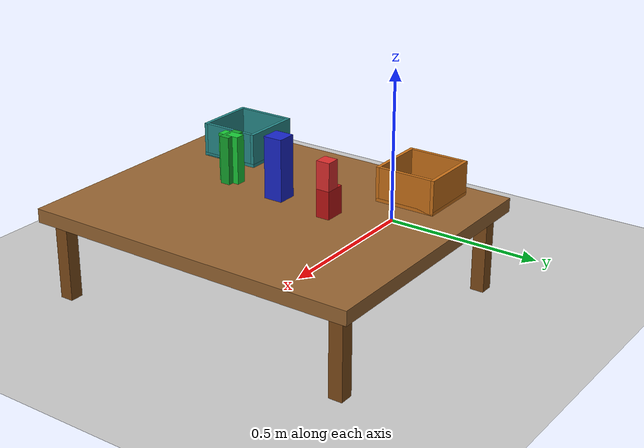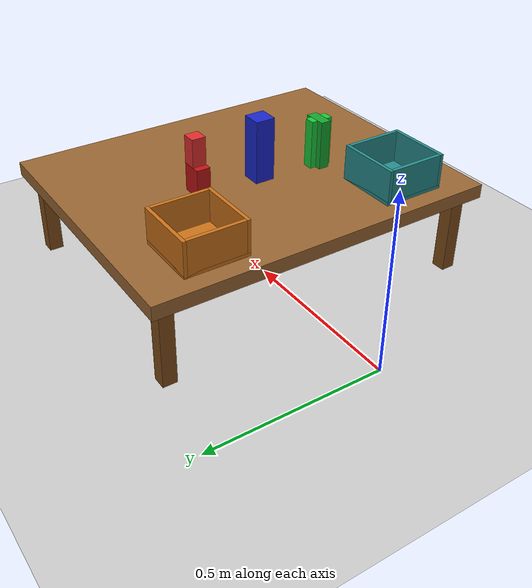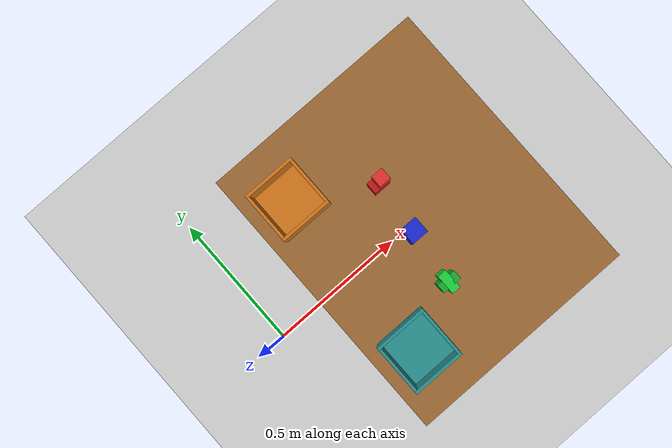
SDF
<?xml version="1.0" ?>
<sdf version="1.9">
  <world name="tabletop_world">
    <!-- GUI (default layout with custom camera pose) -->
    <gui fullscreen='0'>
      <plugin filename="MinimalScene" name="3D View">
        <gz-gui>
          <title>3D View</title>
          <property type="bool" key="showTitleBar">false</property>
          <property type="string" key="state">docked</property>
        </gz-gui>
        <engine>ogre2</engine>
        <scene>scene</scene>
        <ambient_light>0.4 0.4 0.4</ambient_light>
        <background_color>0.8 0.8 0.8</background_color>
        <camera_pose>1.31 0.98 1.07 0 0.39 -2.36</camera_pose>
      </plugin>
      <plugin filename="EntityContextMenuPlugin" name="Entity context menu">
        <gz-gui>
          <property key="state" type="string">floating</property>
          <property key="width" type="double">5</property>
          <property key="height" type="double">5</property>
          <property key="showTitleBar" type="bool">false</property>
        </gz-gui>
      </plugin>
      <plugin filename="GzSceneManager" name="Scene Manager">
        <gz-gui>
          <property key="resizable" type="bool">false</property>
          <property key="width" type="double">5</property>
          <property key="height" type="double">5</property>
          <property key="state" type="string">floating</property>
          <property key="showTitleBar" type="bool">false</property>
        </gz-gui>
      </plugin>
      <plugin filename="InteractiveViewControl" name="Interactive view control">
        <gz-gui>
          <property key="resizable" type="bool">false</property>
          <property key="width" type="double">5</property>
          <property key="height" type="double">5</property>
          <property key="state" type="string">floating</property>
          <property key="showTitleBar" type="bool">false</property>
        </gz-gui>
      </plugin>
      <plugin filename="CameraTracking" name="Camera Tracking">
        <gz-gui>
          <property key="resizable" type="bool">false</property>
          <property key="width" type="double">5</property>
          <property key="height" type="double">5</property>
          <property key="state" type="string">floating</property>
          <property key="showTitleBar" type="bool">false</property>
        </gz-gui>
      </plugin>
      <plugin filename="MarkerManager" name="Marker manager">
        <gz-gui>
          <property key="resizable" type="bool">false</property>
          <property key="width" type="double">5</property>
          <property key="height" type="double">5</property>
          <property key="state" type="string">floating</property>
          <property key="showTitleBar" type="bool">false</property>
        </gz-gui>
      </plugin>
      <plugin filename="SelectEntities" name="Select Entities">
        <gz-gui>
          <property key="resizable" type="bool">false</property>
          <property key="width" type="double">5</property>
          <property key="height" type="double">5</property>
          <property key="state" type="string">floating</property>
          <property key="showTitleBar" type="bool">false</property>
        </gz-gui>
      </plugin>
      <plugin filename="Spawn" name="Spawn Entities">
        <gz-gui>
          <property key="resizable" type="bool">false</property>
          <property key="width" type="double">5</property>
          <property key="height" type="double">5</property>
          <property key="state" type="string">floating</property>
          <property key="showTitleBar" type="bool">false</property>
        </gz-gui>
      </plugin>
      <plugin filename="VisualizationCapabilities" name="Visualization Capabilities">
        <gz-gui>
          <property key="resizable" type="bool">false</property>
          <property key="width" type="double">5</property>
          <property key="height" type="double">5</property>
          <property key="state" type="string">floating</property>
          <property key="showTitleBar" type="bool">false</property>
        </gz-gui>
      </plugin>
      <plugin filename="WorldControl" name="World control">
        <gz-gui>
          <title>World control</title>
          <property type="bool" key="showTitleBar">false</property>
          <property type="bool" key="resizable">false</property>
          <property type="double" key="height">72</property>
          <property type="double" key="z">1</property>
          <property type="string" key="state">floating</property>
          <anchors target="3D View">
            <line own="left" target="left"/>
            <line own="bottom" target="bottom"/>
          </anchors>
        </gz-gui>
        <play_pause>true</play_pause>
        <step>true</step>
        <start_paused>true</start_paused>
        <use_event>true</use_event>
      </plugin>
      <plugin filename="WorldStats" name="World stats">
        <gz-gui>
          <title>World stats</title>
          <property type="bool" key="showTitleBar">false</property>
          <property type="bool" key="resizable">false</property>
          <property type="double" key="height">110</property>
          <property type="double" key="width">290</property>
          <property type="double" key="z">1</property>
          <property type="string" key="state">floating</property>
          <anchors target="3D View">
            <line own="right" target="right"/>
            <line own="bottom" target="bottom"/>
          </anchors>
        </gz-gui>
        <sim_time>true</sim_time>
        <real_time>true</real_time>
        <real_time_factor>true</real_time_factor>
        <iterations>true</iterations>
      </plugin>
      <plugin filename="TransformControl" name="Transform control">
        <gz-gui>
          <property key="resizable" type="bool">false</property>
          <property key="x" type="double">0</property>
          <property key="y" type="double">50</property>
          <property key="width" type="double">250</property>
          <property key="height" type="double">50</property>
          <property key="state" type="string">floating</property>
          <property key="showTitleBar" type="bool">false</property>
          <property key="cardBackground" type="string">#777777</property>
        </gz-gui>
      </plugin>
      <plugin filename="ComponentInspector" name="Component inspector">
        <gz-gui>
          <property type="bool" key="showTitleBar">false</property>
          <property type="string" key="state">docked</property>
        </gz-gui>
      </plugin>
      <plugin filename="EntityTree" name="Entity tree">
        <gz-gui>
          <property type="bool" key="showTitleBar">false</property>
          <property type="string" key="state">docked</property>
        </gz-gui>
      </plugin>
    </gui>

    <!-- Physics -->
    <physics name="1ms" type="ignored">
      <max_step_size>0.001</max_step_size>
      <real_time_factor>1.0</real_time_factor>
    </physics>

    <!-- Plugins -->
    <plugin filename="gz-sim-physics-system" name="gz::sim::systems::Physics"/>
    <plugin filename="gz-sim-user-commands-system" name="gz::sim::systems::UserCommands"/>
    <plugin filename="gz-sim-scene-broadcaster-system" name="gz::sim::systems::SceneBroadcaster"/>
    <plugin filename="gz-sim-contact-system" name="gz::sim::systems::Contact"/>

    <!-- Lighting -->
    <light type="directional" name="sun">
      <cast_shadows>true</cast_shadows>
      <pose>0 0 10 0 0 0</pose>
      <diffuse>0.8 0.8 0.8 1</diffuse>
      <specular>0.2 0.2 0.2 1</specular>
      <attenuation>
        <range>1000</range>
        <constant>0.9</constant>
        <linear>0.01</linear>
        <quadratic>0.001</quadratic>
      </attenuation>
      <direction>-0.5 0.1 -0.9</direction>
    </light>

    <!-- Ground Plane -->
    <model name="ground_plane">
      <static>true</static>
      <link name="link">
        <collision name="collision">
          <geometry>
            <plane>
              <normal>0 0 1</normal>
              <size>100 100</size>
            </plane>
          </geometry>
        </collision>
        <visual name="visual">
          <geometry>
            <plane>
              <normal>0 0 1</normal>
              <size>100 100</size>
            </plane>
          </geometry>
          <material>
            <ambient>0.8 0.8 0.8 1</ambient>
            <diffuse>0.8 0.8 0.8 1</diffuse>
            <specular>0.8 0.8 0.8 1</specular>
          </material>
        </visual>
      </link>
    </model>

    <!-- Table -->
    <model name="table">
      <static>true</static>
      <pose>0.6 0 0 0 0 0</pose>
      <!-- Table top -->
      <link name="table_top">
        <pose>0 0 0.25 0 0 0</pose>
        <collision name="collision">
          <geometry>
            <box>
              <size>0.8 1.0 0.04</size>
            </box>
          </geometry>
        </collision>
        <visual name="visual">
          <geometry>
            <box>
              <size>0.8 1.0 0.04</size>
            </box>
          </geometry>
          <material>
            <ambient>0.6 0.4 0.2 1</ambient>
            <diffuse>0.6 0.4 0.2 1</diffuse>
            <specular>0.1 0.1 0.1 1</specular>
          </material>
        </visual>
      </link>
      <!-- Table legs -->
      <link name="leg1">
        <pose>0.35 0.45 0.115 0 0 0</pose>
        <collision name="collision">
          <geometry>
            <box>
              <size>0.04 0.04 0.23</size>
            </box>
          </geometry>
        </collision>
        <visual name="visual">
          <geometry>
            <box>
              <size>0.04 0.04 0.23</size>
            </box>
          </geometry>
          <material>
            <ambient>0.5 0.3 0.1 1</ambient>
            <diffuse>0.5 0.3 0.1 1</diffuse>
          </material>
        </visual>
      </link>
      <link name="leg2">
        <pose>0.35 -0.45 0.115 0 0 0</pose>
        <collision name="collision">
          <geometry>
            <box>
              <size>0.04 0.04 0.23</size>
            </box>
          </geometry>
        </collision>
        <visual name="visual">
          <geometry>
            <box>
              <size>0.04 0.04 0.23</size>
            </box>
          </geometry>
          <material>
            <ambient>0.5 0.3 0.1 1</ambient>
            <diffuse>0.5 0.3 0.1 1</diffuse>
          </material>
        </visual>
      </link>
      <link name="leg3">
        <pose>-0.35 0.45 0.115 0 0 0</pose>
        <collision name="collision">
          <geometry>
            <box>
              <size>0.04 0.04 0.23</size>
            </box>
          </geometry>
        </collision>
        <visual name="visual">
          <geometry>
            <box>
              <size>0.04 0.04 0.23</size>
            </box>
          </geometry>
          <material>
            <ambient>0.5 0.3 0.1 1</ambient>
            <diffuse>0.5 0.3 0.1 1</diffuse>
          </material>
        </visual>
      </link>
      <link name="leg4">
        <pose>-0.35 -0.45 0.115 0 0 0</pose>
        <collision name="collision">
          <geometry>
            <box>
              <size>0.04 0.04 0.23</size>
            </box>
          </geometry>
        </collision>
        <visual name="visual">
          <geometry>
            <box>
              <size>0.04 0.04 0.23</size>
            </box>
          </geometry>
          <material>
            <ambient>0.5 0.3 0.1 1</ambient>
            <diffuse>0.5 0.3 0.1 1</diffuse>
          </material>
        </visual>
      </link>
      <joint name="leg1_joint" type="fixed">
        <parent>table_top</parent>
        <child>leg1</child>
      </joint>
      <joint name="leg2_joint" type="fixed">
        <parent>table_top</parent>
        <child>leg2</child>
      </joint>
      <joint name="leg3_joint" type="fixed">
        <parent>table_top</parent>
        <child>leg3</child>
      </joint>
      <joint name="leg4_joint" type="fixed">
        <parent>table_top</parent>
        <child>leg4</child>
      </joint>
    </model>

    <!-- Sorting Objects (graspable, fixed poses) -->
    <model name="red_step_block">
      <pose>0.58 0.16 0.35 0 0 0</pose>
      <link name="link">
        <inertial>
          <mass>0.12</mass>
          <inertia>
            <ixx>0.00035</ixx>
            <ixy>0</ixy>
            <ixz>0</ixz>
            <iyy>0.00042</iyy>
            <iyz>0</iyz>
            <izz>0.00028</izz>
          </inertia>
        </inertial>

        <!-- Lower stage -->
        <collision name="lower_collision">
          <pose>0 0 -0.04 0 0 0</pose>
          <geometry>
            <box>
              <size>0.06 0.04 0.08</size>
            </box>
          </geometry>
          <surface>
            <friction>
              <ode>
                <mu>40.0</mu>
                <mu2>40.0</mu2>
              </ode>
            </friction>
          </surface>
        </collision>
        <visual name="lower_visual">
          <pose>0 0 -0.04 0 0 0</pose>
          <geometry>
            <box>
              <size>0.06 0.04 0.08</size>
            </box>
          </geometry>
          <material>
            <ambient>0.75 0.08 0.08 1</ambient>
            <diffuse>0.75 0.08 0.08 1</diffuse>
            <specular>0.25 0.05 0.05 1</specular>
          </material>
        </visual>

        <!-- Upper stage (offset to create a stepped profile) -->
        <collision name="upper_collision">
          <pose>0.01 0 0.04 0 0 0</pose>
          <geometry>
            <box>
              <size>0.04 0.04 0.08</size>
            </box>
          </geometry>
          <surface>
            <friction>
              <ode>
                <mu>40.0</mu>
                <mu2>40.0</mu2>
              </ode>
            </friction>
          </surface>
        </collision>
        <visual name="upper_visual">
          <pose>0.01 0 0.04 0 0 0</pose>
          <geometry>
            <box>
              <size>0.04 0.04 0.08</size>
            </box>
          </geometry>
          <material>
            <ambient>0.88 0.18 0.18 1</ambient>
            <diffuse>0.88 0.18 0.18 1</diffuse>
            <specular>0.25 0.05 0.05 1</specular>
          </material>
        </visual>
      </link>
      <plugin filename="gz-sim-pose-publisher-system"
              name="gz::sim::systems::PosePublisher">
        <publish_link_pose>false</publish_link_pose>
        <publish_model_pose>true</publish_model_pose>
        <update_frequency>60</update_frequency>
      </plugin>
    </model>

    <model name="blue_cuboid">
      <pose>0.56 -0.02 0.36 0 0 0</pose>
      <link name="link">
        <inertial>
          <mass>0.09</mass>
          <inertia>
            <ixx>0.00026</ixx>
            <ixy>0</ixy>
            <ixz>0</ixz>
            <iyy>0.00026</iyy>
            <iyz>0</iyz>
            <izz>0.000035</izz>
          </inertia>
        </inertial>
        <collision name="collision">
          <geometry>
            <box>
              <size>0.056 0.056 0.18</size>
            </box>
          </geometry>
          <surface>
            <friction>
              <ode>
                <mu>45.0</mu>
                <mu2>45.0</mu2>
              </ode>
            </friction>
          </surface>
        </collision>
        <visual name="visual">
          <geometry>
            <box>
              <size>0.056 0.056 0.18</size>
            </box>
          </geometry>
          <material>
            <ambient>0.10 0.15 0.80 1</ambient>
            <diffuse>0.10 0.15 0.80 1</diffuse>
            <specular>0.10 0.15 0.80 1</specular>
          </material>
        </visual>
      </link>
      <plugin filename="gz-sim-pose-publisher-system"
              name="gz::sim::systems::PosePublisher">
        <publish_link_pose>false</publish_link_pose>
        <publish_model_pose>true</publish_model_pose>
        <update_frequency>60</update_frequency>
      </plugin>
    </model>

    <model name="green_cross_block">
      <pose>0.54 -0.20 0.34 0 0 0</pose>
      <link name="link">
        <inertial>
          <mass>0.11</mass>
          <inertia>
            <ixx>0.00032</ixx>
            <ixy>0</ixy>
            <ixz>0</ixz>
            <iyy>0.00032</iyy>
            <iyz>0</iyz>
            <izz>0.00029</izz>
          </inertia>
        </inertial>

        <!-- Cross profile from two intersecting bars -->
        <collision name="x_arm_collision">
          <pose>0 0 0 0 0 0</pose>
          <geometry>
            <box>
              <size>0.065 0.03 0.14</size>
            </box>
          </geometry>
          <surface>
            <friction>
              <ode>
                <mu>40.0</mu>
                <mu2>40.0</mu2>
              </ode>
            </friction>
          </surface>
        </collision>
        <collision name="y_arm_collision">
          <pose>0 0 0 0 0 0</pose>
          <geometry>
            <box>
              <size>0.03 0.065 0.14</size>
            </box>
          </geometry>
          <surface>
            <friction>
              <ode>
                <mu>40.0</mu>
                <mu2>40.0</mu2>
              </ode>
            </friction>
          </surface>
        </collision>

        <visual name="x_arm_visual">
          <pose>0 0 0 0 0 0</pose>
          <geometry>
            <box>
              <size>0.065 0.03 0.14</size>
            </box>
          </geometry>
          <material>
            <ambient>0.08 0.65 0.18 1</ambient>
            <diffuse>0.08 0.65 0.18 1</diffuse>
            <specular>0.08 0.65 0.18 1</specular>
          </material>
        </visual>
        <visual name="y_arm_visual">
          <pose>0 0 0 0 0 0</pose>
          <geometry>
            <box>
              <size>0.03 0.065 0.14</size>
            </box>
          </geometry>
          <material>
            <ambient>0.10 0.80 0.22 1</ambient>
            <diffuse>0.10 0.80 0.22 1</diffuse>
            <specular>0.10 0.80 0.22 1</specular>
          </material>
        </visual>
      </link>
      <plugin filename="gz-sim-pose-publisher-system"
              name="gz::sim::systems::PosePublisher">
        <publish_link_pose>false</publish_link_pose>
        <publish_model_pose>true</publish_model_pose>
        <update_frequency>60</update_frequency>
      </plugin>
    </model>

    <!-- Sorting bins (static) -->
    <model name="bin_a">
      <static>true</static>
      <pose>0.34 0.30 0.27 0 0 0</pose>
      <link name="link">
        <collision name="base_collision">
          <pose>0 0 0.005 0 0 0</pose>
          <geometry>
            <box>
              <size>0.18 0.18 0.01</size>
            </box>
          </geometry>
        </collision>
        <collision name="front_wall_collision">
          <pose>0 0.085 0.05 0 0 0</pose>
          <geometry>
            <box>
              <size>0.18 0.01 0.10</size>
            </box>
          </geometry>
        </collision>
        <collision name="back_wall_collision">
          <pose>0 -0.085 0.05 0 0 0</pose>
          <geometry>
            <box>
              <size>0.18 0.01 0.10</size>
            </box>
          </geometry>
        </collision>
        <collision name="left_wall_collision">
          <pose>-0.085 0 0.05 0 0 0</pose>
          <geometry>
            <box>
              <size>0.01 0.16 0.10</size>
            </box>
          </geometry>
        </collision>
        <collision name="right_wall_collision">
          <pose>0.085 0 0.05 0 0 0</pose>
          <geometry>
            <box>
              <size>0.01 0.16 0.10</size>
            </box>
          </geometry>
        </collision>

        <visual name="base_visual">
          <pose>0 0 0.005 0 0 0</pose>
          <geometry>
            <box>
              <size>0.18 0.18 0.01</size>
            </box>
          </geometry>
          <material>
            <ambient>0.80 0.45 0.10 1</ambient>
            <diffuse>0.80 0.45 0.10 1</diffuse>
            <specular>0.30 0.20 0.10 1</specular>
          </material>
        </visual>
        <visual name="front_wall_visual">
          <pose>0 0.085 0.05 0 0 0</pose>
          <geometry>
            <box>
              <size>0.18 0.01 0.10</size>
            </box>
          </geometry>
          <material>
            <ambient>0.80 0.45 0.10 1</ambient>
            <diffuse>0.80 0.45 0.10 1</diffuse>
            <specular>0.30 0.20 0.10 1</specular>
          </material>
        </visual>
        <visual name="back_wall_visual">
          <pose>0 -0.085 0.05 0 0 0</pose>
          <geometry>
            <box>
              <size>0.18 0.01 0.10</size>
            </box>
          </geometry>
          <material>
            <ambient>0.80 0.45 0.10 1</ambient>
            <diffuse>0.80 0.45 0.10 1</diffuse>
            <specular>0.30 0.20 0.10 1</specular>
          </material>
        </visual>
        <visual name="left_wall_visual">
          <pose>-0.085 0 0.05 0 0 0</pose>
          <geometry>
            <box>
              <size>0.01 0.16 0.10</size>
            </box>
          </geometry>
          <material>
            <ambient>0.80 0.45 0.10 1</ambient>
            <diffuse>0.80 0.45 0.10 1</diffuse>
            <specular>0.30 0.20 0.10 1</specular>
          </material>
        </visual>
        <visual name="right_wall_visual">
          <pose>0.085 0 0.05 0 0 0</pose>
          <geometry>
            <box>
              <size>0.01 0.16 0.10</size>
            </box>
          </geometry>
          <material>
            <ambient>0.80 0.45 0.10 1</ambient>
            <diffuse>0.80 0.45 0.10 1</diffuse>
            <specular>0.30 0.20 0.10 1</specular>
          </material>
        </visual>
      </link>
    </model>

    <model name="bin_b">
      <static>true</static>
      <pose>0.34 -0.30 0.27 0 0 0</pose>
      <link name="link">
        <collision name="base_collision">
          <pose>0 0 0.005 0 0 0</pose>
          <geometry>
            <box>
              <size>0.18 0.18 0.01</size>
            </box>
          </geometry>
        </collision>
        <collision name="front_wall_collision">
          <pose>0 0.085 0.05 0 0 0</pose>
          <geometry>
            <box>
              <size>0.18 0.01 0.10</size>
            </box>
          </geometry>
        </collision>
        <collision name="back_wall_collision">
          <pose>0 -0.085 0.05 0 0 0</pose>
          <geometry>
            <box>
              <size>0.18 0.01 0.10</size>
            </box>
          </geometry>
        </collision>
        <collision name="left_wall_collision">
          <pose>-0.085 0 0.05 0 0 0</pose>
          <geometry>
            <box>
              <size>0.01 0.16 0.10</size>
            </box>
          </geometry>
        </collision>
        <collision name="right_wall_collision">
          <pose>0.085 0 0.05 0 0 0</pose>
          <geometry>
            <box>
              <size>0.01 0.16 0.10</size>
            </box>
          </geometry>
        </collision>

        <visual name="base_visual">
          <pose>0 0 0.005 0 0 0</pose>
          <geometry>
            <box>
              <size>0.18 0.18 0.01</size>
            </box>
          </geometry>
          <material>
            <ambient>0.15 0.55 0.55 1</ambient>
            <diffuse>0.15 0.55 0.55 1</diffuse>
            <specular>0.10 0.30 0.30 1</specular>
          </material>
        </visual>
        <visual name="front_wall_visual">
          <pose>0 0.085 0.05 0 0 0</pose>
          <geometry>
            <box>
              <size>0.18 0.01 0.10</size>
            </box>
          </geometry>
          <material>
            <ambient>0.15 0.55 0.55 1</ambient>
            <diffuse>0.15 0.55 0.55 1</diffuse>
            <specular>0.10 0.30 0.30 1</specular>
          </material>
        </visual>
        <visual name="back_wall_visual">
          <pose>0 -0.085 0.05 0 0 0</pose>
          <geometry>
            <box>
              <size>0.18 0.01 0.10</size>
            </box>
          </geometry>
          <material>
            <ambient>0.15 0.55 0.55 1</ambient>
            <diffuse>0.15 0.55 0.55 1</diffuse>
            <specular>0.10 0.30 0.30 1</specular>
          </material>
        </visual>
        <visual name="left_wall_visual">
          <pose>-0.085 0 0.05 0 0 0</pose>
          <geometry>
            <box>
              <size>0.01 0.16 0.10</size>
            </box>
          </geometry>
          <material>
            <ambient>0.15 0.55 0.55 1</ambient>
            <diffuse>0.15 0.55 0.55 1</diffuse>
            <specular>0.10 0.30 0.30 1</specular>
          </material>
        </visual>
        <visual name="right_wall_visual">
          <pose>0.085 0 0.05 0 0 0</pose>
          <geometry>
            <box>
              <size>0.01 0.16 0.10</size>
            </box>
          </geometry>
          <material>
            <ambient>0.15 0.55 0.55 1</ambient>
            <diffuse>0.15 0.55 0.55 1</diffuse>
            <specular>0.10 0.30 0.30 1</specular>
          </material>
        </visual>
      </link>
    </model>

  </world>
</sdf>
